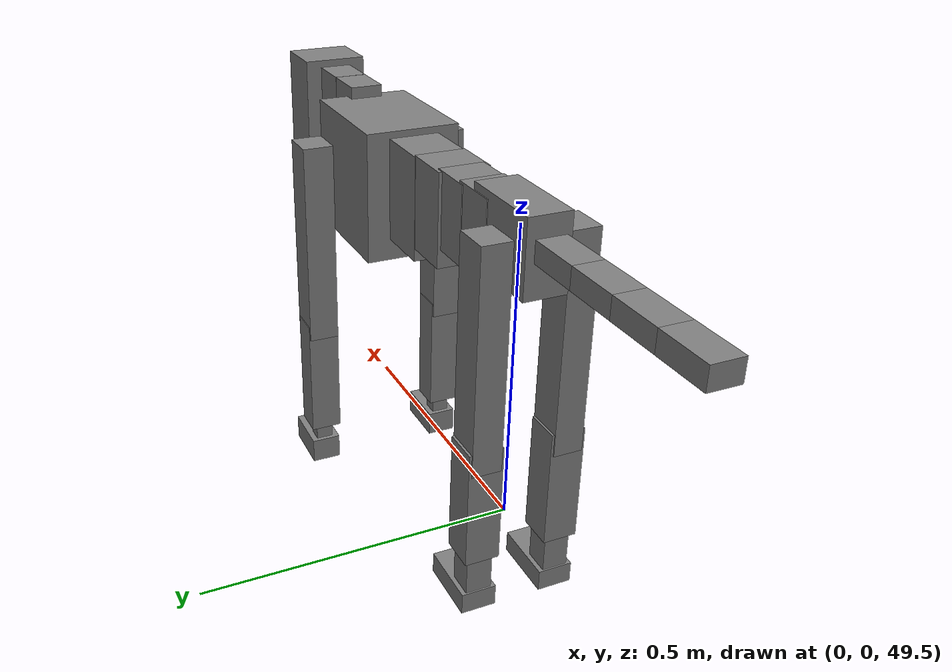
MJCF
<mujoco model="dog">

    <default>
        <joint armature="0.02" stiffness="1" damping="0.2" limited="true"/>
        <geom condim="3" friction="1 0.05 0.05" margin="0.01"/>
        <motor ctrllimited="true" ctrlrange="-1.0 1.0" forcelimited="true" gear="50"/>
    </default>

    <compiler inertiafromgeom="true" angle="radian"/>

    <option timestep="0.016" iterations="50" tolerance="1e-10" solver="Newton" jacobian="dense" cone="pyramidal"/>

    <size nconmax="20000" njmax="60000" nstack="5000000"/>
    <visual>
        <map force="0.1" zfar="30"/>
        <rgba haze="0.15 0.25 0.35 1"/>
        <quality shadowsize="2048"/>
        <global offwidth="800" offheight="800"/>
    </visual>

    <asset>
        <texture type="skybox" builtin="gradient" rgb1="0.3 0.5 0.7" rgb2="0 0 0" width="512" height="512"/>
        <texture name="texplane" type="2d" builtin="checker" rgb1=".2 .3 .4" rgb2=".1 0.15 0.2" width="512" height="512"
                 mark="cross" markrgb=".8 .8 .8"/>
        <texture name="texgeom" type="cube" builtin="flat" mark="cross" width="127" height="1278" rgb1="0.8 0.6 0.4"
                 rgb2="0.8 0.6 0.4" markrgb="1 1 1" random="0.01"/>

        <material name="matplane" reflectance="0.3" texture="texplane" texrepeat="1 1" texuniform="true"/>
        <material name="matgeom" texture="texgeom" texuniform="true" rgba="0.8 0.6 .4 1"/>
    </asset>

    <worldbody>
        <geom name="floor" pos="0 0 0" size="0 0 .25" type="plane" material="matplane" condim="3"/>

        <light directional="false" diffuse=".2 .2 .2" specular="0 0 0" pos="0 0 5" dir="0 0 -1" castshadow="false"/>
        <light mode="targetbodycom" target="torso" directional="false" diffuse=".8 .8 .8" specular="0.3 0.3 0.3"
               pos="0 0 4.0" dir="0 0 -1"/>

        <body name="root" pos="0 0 50">
            <freejoint name="root_1"/>
            <geom type="box" pos="0 0 -0.02" size="0.0774  0.0358  0.063" density="2030"/>

            <body name="spine1" pos="0.054 0 0">
                <joint name="spine1_y" axis="0 1 0" range="0 0.7" limited="true"/>
                <geom type="box" pos="0.02375 0 -0.03" size="0.04375  0.0375  0.05985" density="2030"/>

                <body name="spine2" pos="0.0612 0 0">
                    <joint name="spine2_y" axis="0 1 0" range="-0.15 0.15" limited="true"/>
                    <geom type="box" pos="0.03555  0  -0.04" size="0.04055  0.039  0.06615" density="2030"/>

                    <body name="spine3" pos="0.0730 0 0">
                        <joint name="spine3_y" axis="0 1 0" range="-0.15 0.15" limited="true"/>
                        <geom type="box" pos="0.03555  0  -0.057" size="0.04555  0.0445  0.081" density="2030"/>

                        <body name="spine4" pos="0.0780 0 0">
                            <joint name="spine4_y" axis="0 1 0" range="-0.15 0.15" limited="true"/>
                            <geom type="box" pos="0.05265  0  -0.07" size="0.05265  0.045  0.09135" density="2030"/>

                            <body name="torso" pos="0.1082 0 0">
                                <joint name="torso_y" axis="0 1 0" range="-0.15 0.15" limited="true"/>
                                <geom type="box" pos="0.11925  0  -0.085" size="0.11925  0.085  0.11745"
                                      density="2030"/>

                                <body name="neck1" pos="0.2160  0   0.0180">
                                    <joint name="neck1_y" axis="0 1 0" range="-1.2  -1" limited="true"/>
                                    <geom type="box" pos="0.0423  0  0" size="0.0423  0.03  0.036" density="2325"/>

                                    <body name="neck2" pos="0.0853  0  0">
                                        <joint name="neck2_y" axis="0 1 0" range="0.1  0" limited="true"/>
                                        <geom type="box" pos="0.0423  0  0" size="0.0423  0.03  0.036" density="2325"/>

                                        <body name="head" pos="0.0853  0  0">
                                            <joint name="head_y" axis="0 1 0" range="-0.3  -0.2" limited="true"/>
                                            <geom type="box" pos="0.0531  0  -0.055" size="0.0531  0.06  0.1044"
                                                  density="4030"/>

                                        </body>
                                    </body>
                                </body>

                                <body name="front_shoulder" pos="0.156  0   -0.0480">
                                    <joint name="front_shoulder_y" axis="0 1 0" range="-1 1.5" limited="true"/>
                                    <geom type="box" pos="0 0.13 -0.1656" size="0.0328  0.0280  0.1922" density="1158"/>
                                    <geom type="box" pos="0 -0.13 -0.1656" size="0.0328  0.0280  0.1922"
                                          density="1158"/>

                                    <body name="front_elbow" pos="0  0  -0.3311">
                                        <joint name="front_elbow_y" axis="0 1 0" range="-2 0" limited="true"/>
                                        <geom type="box" pos="0 0.13 -0.1160" size="0.0285  0.0291  0.1160"
                                              density="1081"/>
                                        <geom type="box" pos="0 -0.13 -0.1160" size="0.0285  0.0291  0.1160"
                                              density="1081"/>

                                        <body name="front_wrist" pos="0  0  -0.2321">
                                            <joint name="front_wrist_y" axis="0 1 0" range="-0.2 0" limited="true"/>
                                            <geom type="box" pos="0 0.13 -0.0235" size="0.0147  0.0164  0.0366"
                                                  density="1664"/>
                                            <geom type="box" pos="0 -0.13 -0.0235" size="0.0147  0.0164  0.0366"
                                                  density="1664"/>

                                            <body name="front_finger_end" pos="0  0  -0.0470">
                                                <joint name="front_finger_y" axis="0 1 0" range="-0.4 1"
                                                       limited="true"/>
                                                <geom type="box" pos="0.0276  0.13  -0.0089"
                                                      size="0.0507  0.0276  0.0239" density="1515"/>
                                                <geom type="box" pos="0.0276  -0.13  -0.0089"
                                                      size="0.0507  0.0276  0.0239" density="1515"/>

                                            </body>

                                        </body>
                                    </body>
                                </body>

                            </body>
                        </body>
                    </body>
                </body>
            </body>

            <body name="back_hip" pos="-0.03 0 -0.018">
                <joint name="back_hip_y" axis="0 1 0" range="-1.5 0.3" limited="true"/>
                <geom type="box" pos="0 0.07 -0.1642" size="0.0317  0.0249  0.1870" density="1154"/>
                <geom type="box" pos="0 -0.07 -0.1642" size="0.0317  0.0249  0.1870" density="1154"/>

                <body name="back_knee" pos="0  0  -0.3285">
                    <joint name="back_knee_y" axis="0 1 0" range="0 2.8" limited="true"/>
                    <geom type="box" pos="0 0.07 -0.0865" size="0.0296  0.0291  0.1020" density="1227"/>
                    <geom type="box" pos="0 -0.07 -0.0865" size="0.0296  0.0291  0.1020" density="1227"/>

                    <body name="back_ankle" pos="0  0  -0.1729">
                        <joint name="back_ankle_y" axis="0 1 0" range="-2.2 0" limited="true"/>
                        <geom type="box" pos="0 0.07 -0.0473" size="0.0219  0.0219  0.0586" density="1284"/>
                        <geom type="box" pos="0 -0.07 -0.0473" size="0.0219  0.0219  0.0586" density="1284"/>

                        <body name="back_toe_end" pos="0  0  -0.0946">
                            <joint name="back_toe_y" axis="0 1 0" range="-0.4 1" limited="true"/>
                            <geom type="box" pos="0.0297  0.07  -0.0032" size="0.0544  0.0297  0.0182" density="1515"/>
                            <geom type="box" pos="0.0297  -0.07  -0.0032" size="0.0544  0.0297  0.0182" density="1515"/>

                        </body>
                    </body>
                </body>
            </body>

            <body name="tail1" pos="-0.074 0 -0.006">
                <joint name="tail1_y" axis="0 1 0" range="-0.2 0.2" limited="true"/>
                <geom type="box" pos="-0.0536  0  0" size="0.045  0.025  0.0175" density="1587"/>

                <body name="tail2" pos="-0.09 0 0">
                    <joint name="tail2_y" axis="0 1 0" range="-0.2 0.2" limited="true"/>
                    <geom type="box" pos="-0.0536  0  0" size="0.045  0.025  0.0175" density="1587"/>

                    <body name="tail3" pos="-0.09 0 0">
                        <joint name="tail3_y" axis="0 1 0" range="-0.2 0.2" limited="true"/>
                        <geom type="box" pos="-0.0536  0  0" size="0.045  0.025  0.0175" density="1587"/>

                        <body name="tail4" pos="-0.09 0 0">
                            <joint name="tail4_y" axis="0 1 0" range="-0.2 0.2" limited="true"/>
                            <geom type="box" pos="-0.0536  0  0" size="0.045  0.025  0.0175" density="1587"/>

                        </body>
                    </body>
                </body>
            </body>
        </body>
    </worldbody>

    <actuator>
        <motor joint="spine1_y" forcerange="-150 150     "/>
        <motor joint="spine2_y" forcerange="-150 150     "/>
        <motor joint="spine3_y" forcerange="-150 150     "/>
        <motor joint="spine4_y" forcerange="-150 150     "/>
        <motor joint="torso_y" forcerange="-150 150     "/>
        <motor joint="neck1_y" forcerange="-100 100       "/>
        <motor joint="neck2_y" forcerange="-100 100       "/>
        <motor joint="head_y" forcerange="-150 150       "/>
        <motor joint="front_shoulder_y" forcerange="-140.99 145.68"/>
        <motor joint="front_elbow_y" forcerange="-195.10 116.75"/>
        <motor joint="front_wrist_y" forcerange="-52.24 78.78"/>
        <motor joint="front_finger_y" forcerange="-49.90 57.45"/>
        <motor joint="back_hip_y" forcerange="-230.00 301.42"/>
        <motor joint="back_knee_y" forcerange="-269.58 354.16"/>
        <motor joint="back_angle_y" forcerange="-195.20 55.06"/>
        <motor joint="back_toe_y" forcerange="-36.25 121.12"/>
        <motor joint="tail1_y" forcerange="-50 50     "/>
        <motor joint="tail2_y" forcerange="-50 50     "/>
        <motor joint="tail3_y" forcerange="-50 50     "/>
        <motor joint="tail4_y" forcerange="-50 50     "/>
    </actuator>
</mujoco>
